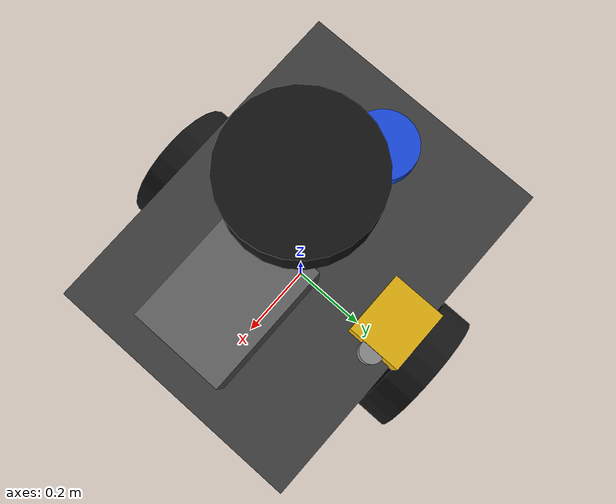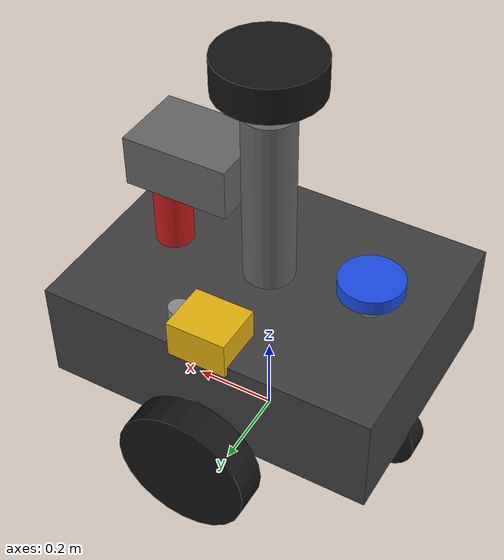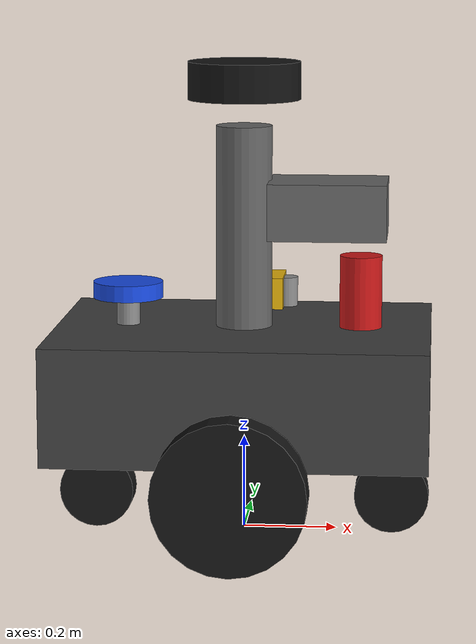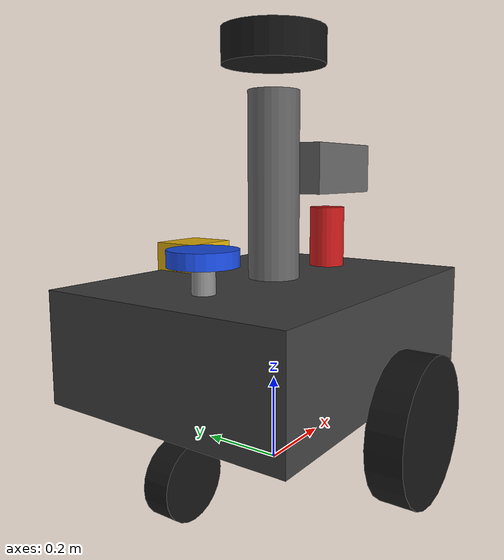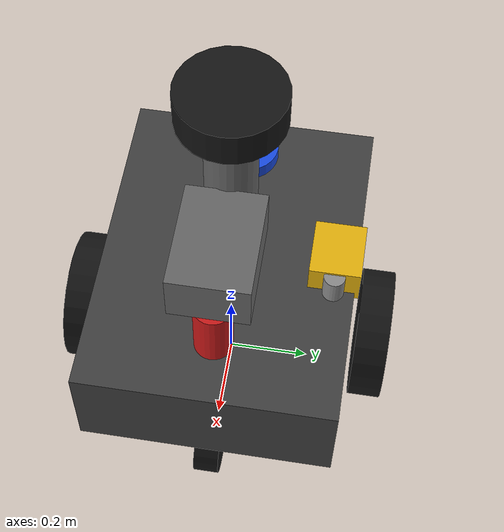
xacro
<?xml version="1.0"?>
<robot xmlns:xacro="http://www.ros.org/wiki/xacro"
       name="inspection_robot">

  <!-- MATERIALS                 -->

  <material name="robot_gray">
    <color rgba="0.25 0.25 0.25 1.0"/>
  </material>

  <material name="robot_dark">
    <color rgba="0.08 0.08 0.08 1.0"/>
  </material>

  <material name="sensor_gray">
    <color rgba="0.4 0.4 0.4 1.0"/>
  </material>

  <!-- BASE BODY                 -->

  <link name="base_link">

    <visual>
      <geometry>
        <box size="0.8 0.6 0.25"/>
      </geometry>
      <origin xyz="0 0 0.32"/>
      <material name="robot_gray"/>
    </visual>

    <collision>
      <geometry>
        <box size="0.8 0.6 0.25"/>
      </geometry>
      <origin xyz="0 0 0.445"/>
    </collision>

    <inertial>
      <mass value="10.0"/>
      <origin xyz="0 0 0.08"/>
      <inertia
        ixx="0.75"
        ixy="0.0"
        ixz="0.0"
        iyy="1.0"
        iyz="0.0"
        izz="1.25"/>
    </inertial>

  </link>
  <!-- Temperature Sensor -->
  <link name="temperature_link">
    <visual name="temperature_body">
      <origin xyz="0 0 0"/>
      <geometry>
        <cylinder radius="0.045" length="0.16"/>
      </geometry>
      <material name="temperature_red">
        <color rgba="0.8 0.1 0.1 1"/>
      </material>
    </visual>

    <visual name="temperature_probe">
      <origin xyz="0 0 -0.11"/>
      <geometry>
        <cylinder radius="0.018" length="0.08"/>
      </geometry>
      <material name="metal">
        <color rgba="0.65 0.65 0.65 1"/>
      </material>
    </visual>

    <inertial>
      <mass value="0.05"/>
      <origin xyz="0 0 0"/>
      <inertia ixx="0.0001" ixy="0" ixz="0"
               iyy="0.0001" iyz="0" izz="0.0001"/>
    </inertial>
  </link>
  <joint name="temperature_joint" type="fixed">
    <parent link="base_link"/>
    <child link="temperature_link"/>
    <origin xyz="0.25 0 0.52" rpy="0 0 0"/>
  </joint>

  <!-- Gas Sensor -->
  <link name="gas_sensor_link">
    <visual name="gas_body">
      <origin xyz="0 0 0"/>
      <geometry>
        <box size="0.14 0.12 0.09"/>
      </geometry>
      <material name="gas_yellow">
        <color rgba="0.9 0.7 0.05 1"/>
      </material>
    </visual>

    <visual name="gas_probe">
      <origin xyz="0.075 0 0"/>
      <geometry>
        <cylinder radius="0.025" length="0.08"/>
      </geometry>
      <material name="metal_gas">
        <color rgba="0.55 0.55 0.55 1"/>
      </material>
    </visual>

    <inertial>
      <mass value="0.05"/>
      <origin xyz="0 0 0"/>
      <inertia ixx="0.0001" ixy="0" ixz="0"
               iyy="0.0001" iyz="0" izz="0.0001"/>
    </inertial>
  </link>
  <joint name="gas_sensor_joint" type="fixed">
    <parent link="base_link"/>
    <child link="gas_sensor_link"/>
    <origin xyz="0.0 0.25 0.47" rpy="0 0 0"/>
  </joint>

  <!-- Pressure Sensor -->
  <link name="pressure_link">
    <visual name="pressure_gauge">
      <origin xyz="0 0 0"/>
      <geometry>
        <cylinder radius="0.075" length="0.035"/>
      </geometry>
      <material name="pressure_blue">
        <color rgba="0.1 0.3 0.9 1"/>
      </material>
    </visual>

    <visual name="pressure_connector">
      <origin xyz="0 0 -0.055"/>
      <geometry>
        <cylinder radius="0.025" length="0.08"/>
      </geometry>
      <material name="metal_pressure">
        <color rgba="0.55 0.55 0.55 1"/>
      </material>
    </visual>

    <inertial>
      <mass value="0.05"/>
      <origin xyz="0 0 0"/>
      <inertia ixx="0.0001" ixy="0" ixz="0"
               iyy="0.0001" iyz="0" izz="0.0001"/>
    </inertial>
  </link>
  <joint name="pressure_joint" type="fixed">
    <parent link="base_link"/>
    <child link="pressure_link"/>
    <origin xyz="-0.25 0 0.52" rpy="0 0 0"/>
  </joint>

  <!-- LEFT WHEEL                -->

  <link name="left_wheel_link">

    <visual>
      <geometry>
        <cylinder radius="0.16" length="0.08"/>
      </geometry>
      <origin xyz="0 0 0" rpy="1.5708 0 0"/>
      <material name="robot_dark"/>
    </visual>

    <collision>
      <geometry>
        <cylinder radius="0.16" length="0.08"/>
      </geometry>
      <origin xyz="0 0 0" rpy="1.5708 0 0"/>
    </collision>

    <inertial>
      <mass value="1.0"/>
      <inertia
        ixx="0.01"
        ixy="0.0"
        ixz="0.0"
        iyy="0.01"
        iyz="0.0"
        izz="0.01"/>
    </inertial>

  </link>

  <joint name="left_wheel_joint"
         type="continuous">

    <parent link="base_link"/>
    <child link="left_wheel_link"/>

    <origin xyz="0 0.36 0.16"/>
    <axis xyz="0 1 0"/>

  </joint>

  <!-- RIGHT WHEEL               -->

  <link name="right_wheel_link">

    <visual>
      <geometry>
        <cylinder radius="0.16" length="0.08"/>
      </geometry>
      <origin xyz="0 0 0" rpy="1.5708 0 0"/>
      <material name="robot_dark"/>
    </visual>

    <collision>
      <geometry>
        <cylinder radius="0.16" length="0.08"/>
      </geometry>
      <origin xyz="0 0 0" rpy="1.5708 0 0"/>
    </collision>

    <inertial>
      <mass value="1.0"/>
      <inertia
        ixx="0.01"
        ixy="0.0"
        ixz="0.0"
        iyy="0.01"
        iyz="0.0"
        izz="0.01"/>
    </inertial>

  </link>

  <joint name="right_wheel_joint"
         type="continuous">

    <parent link="base_link"/>
    <child link="right_wheel_link"/>

    <origin xyz="0 -0.36 0.16"/>
    <axis xyz="0 1 0"/>

  </joint>

  <!-- PASSIVE SUPPORT WHEELS   -->

  <link name="front_support_wheel_link">
    <visual>
      <geometry>
        <cylinder radius="0.08" length="0.06"/>
      </geometry>
      <origin xyz="0 0 0" rpy="1.5708 0 0"/>
      <material name="robot_dark"/>
    </visual>

    <inertial>
      <mass value="0.2"/>
      <inertia
        ixx="0.001"
        ixy="0.0"
        ixz="0.0"
        iyy="0.001"
        iyz="0.0"
        izz="0.001"/>
    </inertial>
  </link>

  <joint name="front_support_wheel_joint"
         type="fixed">
    <parent link="base_link"/>
    <child link="front_support_wheel_link"/>
    <origin xyz="0.32 0 0.08"/>
    <axis xyz="0 1 0"/>
    <dynamics damping="0.05" friction="0.01"/>
  </joint>

  <link name="rear_support_wheel_link">
    <visual>
      <geometry>
        <cylinder radius="0.08" length="0.06"/>
      </geometry>
      <origin xyz="0 0 0" rpy="1.5708 0 0"/>
      <material name="robot_dark"/>
    </visual>

    <collision>
      <geometry>
        <cylinder radius="0.08" length="0.06"/>
      </geometry>
      <origin xyz="0 0 0" rpy="1.5708 0 0"/>
    </collision>

    <inertial>
      <mass value="0.2"/>
      <inertia
        ixx="0.001"
        ixy="0.0"
        ixz="0.0"
        iyy="0.001"
        iyz="0.0"
        izz="0.001"/>
    </inertial>
  </link>

  <joint name="rear_support_wheel_joint"
         type="fixed">
    <parent link="base_link"/>
    <child link="rear_support_wheel_link"/>
    <origin xyz="-0.32 0 0.08"/>
    <axis xyz="0 1 0"/>
    <dynamics damping="0.05" friction="0.01"/>
  </joint>

  <!-- SENSOR MAST               -->

  <link name="sensor_mast_link">

    <visual>
      <geometry>
        <cylinder radius="0.06" length="0.45"/>
      </geometry>
      <origin xyz="0 0 0"/>
      <material name="sensor_gray"/>
    </visual>

  </link>

  <joint name="sensor_mast_joint"
         type="fixed">

    <parent link="base_link"/>
    <child link="sensor_mast_link"/>

    <origin xyz="0 0 0.65"/>

  </joint>

  <!-- LIDAR                     -->

  <link name="lidar_link">

    <visual>
      <geometry>
        <cylinder radius="0.12" length="0.08"/>
      </geometry>
      <material name="robot_dark"/>
    </visual>

  </link>

  <joint name="lidar_joint"
         type="fixed">

    <parent link="sensor_mast_link"/>
    <child link="lidar_link"/>

    <origin xyz="0 0 0.32"/>

  </joint>

  <!-- INSPECTION SENSOR MODULE  -->

  <link name="inspection_sensor_link">

    <visual>
      <geometry>
        <box size="0.25 0.18 0.12"/>
      </geometry>
      <material name="sensor_gray"/>
    </visual>

  </link>

  <joint name="inspection_sensor_joint"
         type="fixed">

    <parent link="sensor_mast_link"/>
    <child link="inspection_sensor_link"/>

    <origin xyz="0.18 0 0.05"/>

  </joint>
  <!-- GAZEBO DIFFERENTIAL DRIVE -->

  <gazebo>

    <plugin name="diff_drive"
            filename="libgazebo_ros_diff_drive.so">

      <ros>
        <namespace>/</namespace>
      </ros>

      <update_rate>50</update_rate>

      <left_joint>left_wheel_joint</left_joint>
      <right_joint>right_wheel_joint</right_joint>

      <wheel_separation>0.72</wheel_separation>
      <wheel_diameter>0.32</wheel_diameter>

      <max_wheel_torque>20</max_wheel_torque>
      <max_wheel_acceleration>5.0</max_wheel_acceleration>

      <command_topic>cmd_vel</command_topic>
      <odometry_topic>odom</odometry_topic>

      <odometry_frame>odom</odometry_frame>
      <robot_base_frame>base_link</robot_base_frame>

      <publish_odom>true</publish_odom>
      <publish_odom_tf>true</publish_odom_tf>
      <publish_wheel_tf>true</publish_wheel_tf>

    </plugin>

  </gazebo>
<!-- GAZEBO LIDAR SENSOR -->

<gazebo reference="lidar_link">

  <sensor name="lidar_sensor" type="ray">

    <pose>0 0 0 0 0 0</pose>

    <visualize>true</visualize>

    <update_rate>10</update_rate>

    <ray>
      <scan>
        <horizontal>
          <samples>360</samples>
          <resolution>1</resolution>
          <min_angle>-3.14159</min_angle>
          <max_angle>3.14159</max_angle>
        </horizontal>
      </scan>

      <range>
        <min>0.12</min>
        <max>10.0</max>
        <resolution>0.01</resolution>
      </range>

    </ray>

    <plugin name="gazebo_ros_lidar"
            filename="libgazebo_ros_ray_sensor.so">

      <ros>
        <namespace>/</namespace>
        <remapping>~/out:=scan</remapping>
      </ros>

      <output_type>sensor_msgs/LaserScan</output_type>
      <frame_name>lidar_link</frame_name>

    </plugin>

  </sensor>

</gazebo>
  <!-- Gazebo sensor colors -->
  <gazebo reference="temperature_link">
    <material>Gazebo/Red</material>
  </gazebo>

  <gazebo reference="gas_sensor_link">
    <material>Gazebo/Yellow</material>
  </gazebo>

  <gazebo reference="pressure_link">
    <material>Gazebo/Blue</material>
  </gazebo>
</robot>
